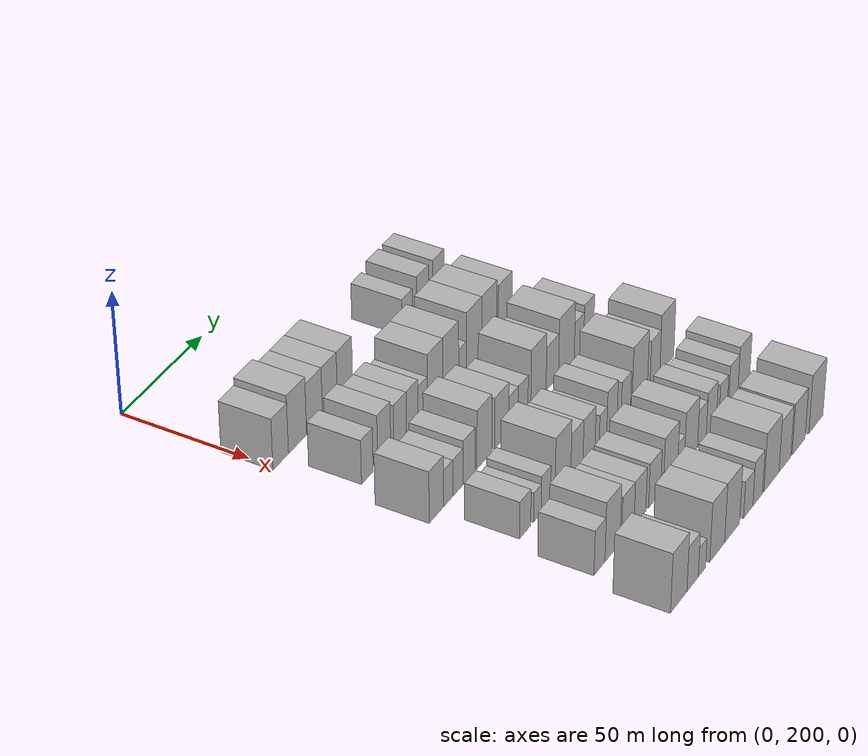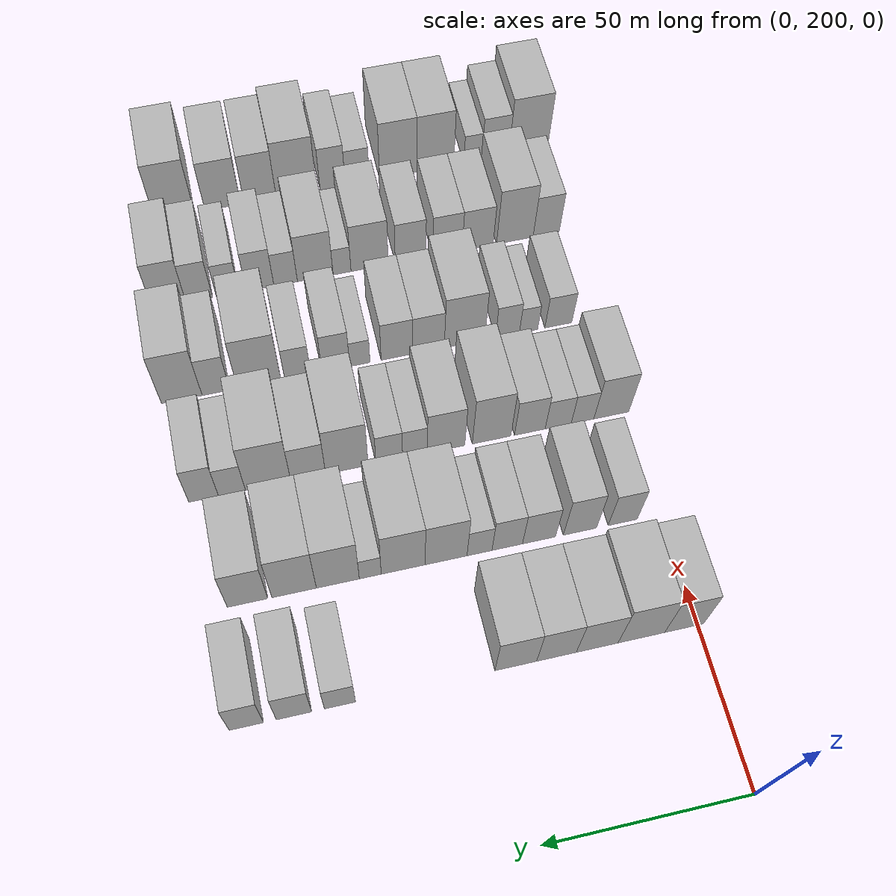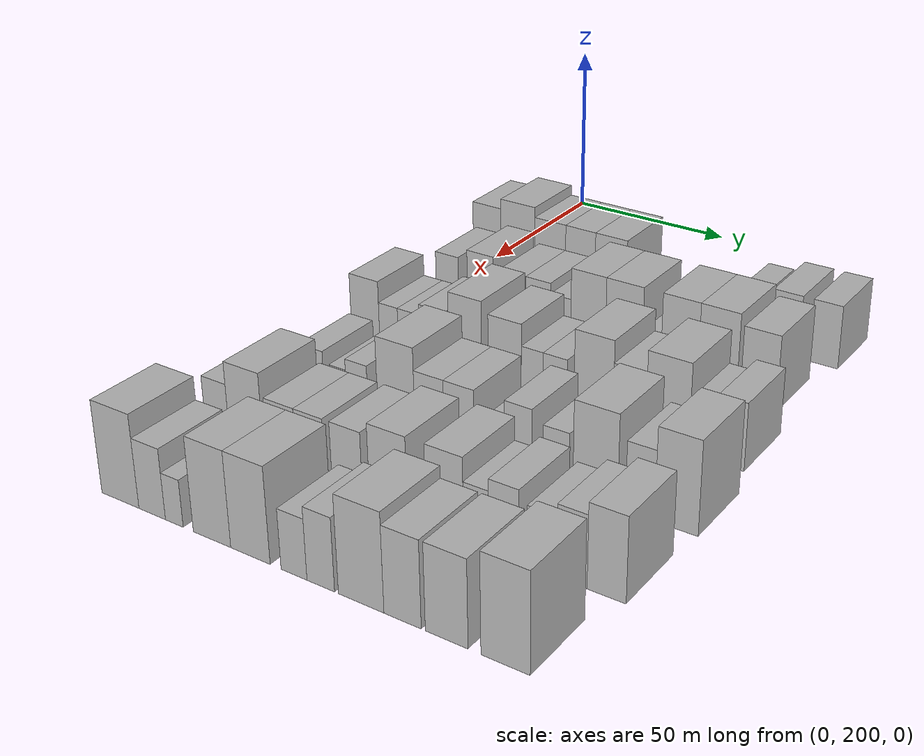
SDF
<sdf version="1.6">
 <world name="default">
  <model name="building_77">
   <static>1</static>
   <pose>50.0000 203.4491 0 0.000000 0.000000 0.000000</pose>
   <link name="link">
    <pose>0 0 10.50 0 0 0</pose>
    <collision name="collision"><geometry><box><size>20.0000 9.7336 21.0000</size></box></geometry></collision>
    <visual name="visual">
     <cast_shadows>0</cast_shadows>
     <geometry><box><size>20.0000 9.7336 21.0000</size></box></geometry>
     <material>
      <script>
       <uri>model://HANNAS_wall/materials/scripts</uri>
       <uri>model://HANNAS_wall/materials/textures</uri>
       <name>vrc/HANNAS_wall</name>
      </script>
     </material>
    </visual>
   </link>
  </model>
  <model name="building_78">
   <static>1</static>
   <pose>50.0000 214.1123 0 0.000000 0.000000 0.000000</pose>
   <link name="link">
    <pose>0 0 12.00 0 0 0</pose>
    <collision name="collision"><geometry><box><size>20.0000 11.5930 24.0000</size></box></geometry></collision>
    <visual name="visual">
     <cast_shadows>0</cast_shadows>
     <geometry><box><size>20.0000 11.5930 24.0000</size></box></geometry>
     <material>
      <script>
       <uri>model://HANNAS_wall/materials/scripts</uri>
       <uri>model://HANNAS_wall/materials/textures</uri>
       <name>vrc/HANNAS_wall</name>
      </script>
     </material>
    </visual>
   </link>
  </model>
  <model name="building_79">
   <static>1</static>
   <pose>50.0000 225.0563 0 0.000000 0.000000 0.000000</pose>
   <link name="link">
    <pose>0 0 10.50 0 0 0</pose>
    <collision name="collision"><geometry><box><size>20.0000 10.2950 21.0000</size></box></geometry></collision>
    <visual name="visual">
     <cast_shadows>0</cast_shadows>
     <geometry><box><size>20.0000 10.2950 21.0000</size></box></geometry>
     <material>
      <script>
       <uri>model://HANNAS_wall/materials/scripts</uri>
       <uri>model://HANNAS_wall/materials/textures</uri>
       <name>vrc/HANNAS_wall</name>
      </script>
     </material>
    </visual>
   </link>
  </model>
  <model name="building_80">
   <static>1</static>
   <pose>50.0000 235.0597 0 0.000000 0.000000 0.000000</pose>
   <link name="link">
    <pose>0 0 10.50 0 0 0</pose>
    <collision name="collision"><geometry><box><size>20.0000 9.7116 21.0000</size></box></geometry></collision>
    <visual name="visual">
     <cast_shadows>0</cast_shadows>
     <geometry><box><size>20.0000 9.7116 21.0000</size></box></geometry>
     <material>
      <script>
       <uri>model://HANNAS_wall/materials/scripts</uri>
       <uri>model://HANNAS_wall/materials/textures</uri>
       <name>vrc/HANNAS_wall</name>
      </script>
     </material>
    </visual>
   </link>
  </model>
  <model name="building_81">
   <static>1</static>
   <pose>50.0000 244.9860 0 0.000000 0.000000 0.000000</pose>
   <link name="link">
    <pose>0 0 10.50 0 0 0</pose>
    <collision name="collision"><geometry><box><size>20.0000 10.1410 21.0000</size></box></geometry></collision>
    <visual name="visual">
     <cast_shadows>0</cast_shadows>
     <geometry><box><size>20.0000 10.1410 21.0000</size></box></geometry>
     <material>
      <script>
       <uri>model://HANNAS_wall/materials/scripts</uri>
       <uri>model://HANNAS_wall/materials/textures</uri>
       <name>vrc/HANNAS_wall</name>
      </script>
     </material>
    </visual>
   </link>
  </model>
  <model name="building_82">
   <static>1</static>
   <pose>50.0000 287.0951 0 0.000000 0.000000 0.000000</pose>
   <link name="link">
    <pose>0 0 7.50 0 0 0</pose>
    <collision name="collision"><geometry><box><size>20.0000 7.3590 15.0000</size></box></geometry></collision>
    <visual name="visual">
     <cast_shadows>0</cast_shadows>
     <geometry><box><size>20.0000 7.3590 15.0000</size></box></geometry>
     <material>
      <script>
       <uri>model://HANNAS_wall/materials/scripts</uri>
       <uri>model://HANNAS_wall/materials/textures</uri>
       <name>vrc/HANNAS_wall</name>
      </script>
     </material>
    </visual>
   </link>
  </model>
  <model name="building_83">
   <static>1</static>
   <pose>50.0000 297.9197 0 0.000000 0.000000 0.000000</pose>
   <link name="link">
    <pose>0 0 9.00 0 0 0</pose>
    <collision name="collision"><geometry><box><size>20.0000 8.2903 18.0000</size></box></geometry></collision>
    <visual name="visual">
     <cast_shadows>0</cast_shadows>
     <geometry><box><size>20.0000 8.2903 18.0000</size></box></geometry>
     <material>
      <script>
       <uri>model://HANNAS_wall/materials/scripts</uri>
       <uri>model://HANNAS_wall/materials/textures</uri>
       <name>vrc/HANNAS_wall</name>
      </script>
     </material>
    </visual>
   </link>
  </model>
  <model name="building_84">
   <static>1</static>
   <pose>50.0000 309.0456 0 0.000000 0.000000 0.000000</pose>
   <link name="link">
    <pose>0 0 9.00 0 0 0</pose>
    <collision name="collision"><geometry><box><size>20.0000 7.9614 18.0000</size></box></geometry></collision>
    <visual name="visual">
     <cast_shadows>0</cast_shadows>
     <geometry><box><size>20.0000 7.9614 18.0000</size></box></geometry>
     <material>
      <script>
       <uri>model://HANNAS_wall/materials/scripts</uri>
       <uri>model://HANNAS_wall/materials/textures</uri>
       <name>vrc/HANNAS_wall</name>
      </script>
     </material>
    </visual>
   </link>
  </model>
  <model name="building_187">
   <static>1</static>
   <pose>79.0000 209.8755 0 0.000000 0.000000 0.000000</pose>
   <link name="link">
    <pose>0 0 9.00 0 0 0</pose>
    <collision name="collision"><geometry><box><size>20.0000 7.5238 18.0000</size></box></geometry></collision>
    <visual name="visual">
     <cast_shadows>0</cast_shadows>
     <geometry><box><size>20.0000 7.5238 18.0000</size></box></geometry>
     <material>
      <script>
       <uri>model://HANNAS_wall/materials/scripts</uri>
       <uri>model://HANNAS_wall/materials/textures</uri>
       <name>vrc/HANNAS_wall</name>
      </script>
     </material>
    </visual>
   </link>
  </model>
  <model name="building_188">
   <static>1</static>
   <pose>79.0000 220.9124 0 0.000000 0.000000 0.000000</pose>
   <link name="link">
    <pose>0 0 10.50 0 0 0</pose>
    <collision name="collision"><geometry><box><size>20.0000 8.5501 21.0000</size></box></geometry></collision>
    <visual name="visual">
     <cast_shadows>0</cast_shadows>
     <geometry><box><size>20.0000 8.5501 21.0000</size></box></geometry>
     <material>
      <script>
       <uri>model://HANNAS_wall/materials/scripts</uri>
       <uri>model://HANNAS_wall/materials/textures</uri>
       <name>vrc/HANNAS_wall</name>
      </script>
     </material>
    </visual>
   </link>
  </model>
  <model name="building_189">
   <static>1</static>
   <pose>79.0000 231.4026 0 0.000000 0.000000 0.000000</pose>
   <link name="link">
    <pose>0 0 9.00 0 0 0</pose>
    <collision name="collision"><geometry><box><size>20.0000 8.4302 18.0000</size></box></geometry></collision>
    <visual name="visual">
     <cast_shadows>0</cast_shadows>
     <geometry><box><size>20.0000 8.4302 18.0000</size></box></geometry>
     <material>
      <script>
       <uri>model://HANNAS_wall/materials/scripts</uri>
       <uri>model://HANNAS_wall/materials/textures</uri>
       <name>vrc/HANNAS_wall</name>
      </script>
     </material>
    </visual>
   </link>
  </model>
  <model name="building_190">
   <static>1</static>
   <pose>79.0000 239.4987 0 0.000000 0.000000 0.000000</pose>
   <link name="link">
    <pose>0 0 9.00 0 0 0</pose>
    <collision name="collision"><geometry><box><size>20.0000 7.7620 18.0000</size></box></geometry></collision>
    <visual name="visual">
     <cast_shadows>0</cast_shadows>
     <geometry><box><size>20.0000 7.7620 18.0000</size></box></geometry>
     <material>
      <script>
       <uri>model://HANNAS_wall/materials/scripts</uri>
       <uri>model://HANNAS_wall/materials/textures</uri>
       <name>vrc/HANNAS_wall</name>
      </script>
     </material>
    </visual>
   </link>
  </model>
  <model name="building_191">
   <static>1</static>
   <pose>79.0000 246.5307 0 0.000000 0.000000 0.000000</pose>
   <link name="link">
    <pose>0 0 7.50 0 0 0</pose>
    <collision name="collision"><geometry><box><size>20.0000 6.3020 15.0000</size></box></geometry></collision>
    <visual name="visual">
     <cast_shadows>0</cast_shadows>
     <geometry><box><size>20.0000 6.3020 15.0000</size></box></geometry>
     <material>
      <script>
       <uri>model://HANNAS_wall/materials/scripts</uri>
       <uri>model://HANNAS_wall/materials/textures</uri>
       <name>vrc/HANNAS_wall</name>
      </script>
     </material>
    </visual>
   </link>
  </model>
  <model name="building_192">
   <static>1</static>
   <pose>79.0000 254.9604 0 0.000000 0.000000 0.000000</pose>
   <link name="link">
    <pose>0 0 12.00 0 0 0</pose>
    <collision name="collision"><geometry><box><size>20.0000 10.5575 24.0000</size></box></geometry></collision>
    <visual name="visual">
     <cast_shadows>0</cast_shadows>
     <geometry><box><size>20.0000 10.5575 24.0000</size></box></geometry>
     <material>
      <script>
       <uri>model://HANNAS_wall/materials/scripts</uri>
       <uri>model://HANNAS_wall/materials/textures</uri>
       <name>vrc/HANNAS_wall</name>
      </script>
     </material>
    </visual>
   </link>
  </model>
  <model name="building_193">
   <static>1</static>
   <pose>79.0000 265.6976 0 0.000000 0.000000 0.000000</pose>
   <link name="link">
    <pose>0 0 12.00 0 0 0</pose>
    <collision name="collision"><geometry><box><size>20.0000 10.9169 24.0000</size></box></geometry></collision>
    <visual name="visual">
     <cast_shadows>0</cast_shadows>
     <geometry><box><size>20.0000 10.9169 24.0000</size></box></geometry>
     <material>
      <script>
       <uri>model://HANNAS_wall/materials/scripts</uri>
       <uri>model://HANNAS_wall/materials/textures</uri>
       <name>vrc/HANNAS_wall</name>
      </script>
     </material>
    </visual>
   </link>
  </model>
  <model name="building_194">
   <static>1</static>
   <pose>79.0000 273.8722 0 0.000000 0.000000 0.000000</pose>
   <link name="link">
    <pose>0 0 6.00 0 0 0</pose>
    <collision name="collision"><geometry><box><size>20.0000 5.4324 12.0000</size></box></geometry></collision>
    <visual name="visual">
     <cast_shadows>0</cast_shadows>
     <geometry><box><size>20.0000 5.4324 12.0000</size></box></geometry>
     <material>
      <script>
       <uri>model://HANNAS_wall/materials/scripts</uri>
       <uri>model://HANNAS_wall/materials/textures</uri>
       <name>vrc/HANNAS_wall</name>
      </script>
     </material>
    </visual>
   </link>
  </model>
  <model name="building_195">
   <static>1</static>
   <pose>79.0000 281.8985 0 0.000000 0.000000 0.000000</pose>
   <link name="link">
    <pose>0 0 12.00 0 0 0</pose>
    <collision name="collision"><geometry><box><size>20.0000 10.6200 24.0000</size></box></geometry></collision>
    <visual name="visual">
     <cast_shadows>0</cast_shadows>
     <geometry><box><size>20.0000 10.6200 24.0000</size></box></geometry>
     <material>
      <script>
       <uri>model://HANNAS_wall/materials/scripts</uri>
       <uri>model://HANNAS_wall/materials/textures</uri>
       <name>vrc/HANNAS_wall</name>
      </script>
     </material>
    </visual>
   </link>
  </model>
  <model name="building_196">
   <static>1</static>
   <pose>79.0000 292.6596 0 0.000000 0.000000 0.000000</pose>
   <link name="link">
    <pose>0 0 12.00 0 0 0</pose>
    <collision name="collision"><geometry><box><size>20.0000 10.9022 24.0000</size></box></geometry></collision>
    <visual name="visual">
     <cast_shadows>0</cast_shadows>
     <geometry><box><size>20.0000 10.9022 24.0000</size></box></geometry>
     <material>
      <script>
       <uri>model://HANNAS_wall/materials/scripts</uri>
       <uri>model://HANNAS_wall/materials/textures</uri>
       <name>vrc/HANNAS_wall</name>
      </script>
     </material>
    </visual>
   </link>
  </model>
  <model name="building_197">
   <static>1</static>
   <pose>79.0000 304.0490 0 0.000000 0.000000 0.000000</pose>
   <link name="link">
    <pose>0 0 10.50 0 0 0</pose>
    <collision name="collision"><geometry><box><size>20.0000 9.8767 21.0000</size></box></geometry></collision>
    <visual name="visual">
     <cast_shadows>0</cast_shadows>
     <geometry><box><size>20.0000 9.8767 21.0000</size></box></geometry>
     <material>
      <script>
       <uri>model://HANNAS_wall/materials/scripts</uri>
       <uri>model://HANNAS_wall/materials/textures</uri>
       <name>vrc/HANNAS_wall</name>
      </script>
     </material>
    </visual>
   </link>
  </model>
  <model name="building_290">
   <static>1</static>
   <pose>108.0000 204.0424 0 0.000000 0.000000 0.000000</pose>
   <link name="link">
    <pose>0 0 10.50 0 0 0</pose>
    <collision name="collision"><geometry><box><size>20.0000 9.4125 21.0000</size></box></geometry></collision>
    <visual name="visual">
     <cast_shadows>0</cast_shadows>
     <geometry><box><size>20.0000 9.4125 21.0000</size></box></geometry>
     <material>
      <script>
       <uri>model://HANNAS_wall/materials/scripts</uri>
       <uri>model://HANNAS_wall/materials/textures</uri>
       <name>vrc/HANNAS_wall</name>
      </script>
     </material>
    </visual>
   </link>
  </model>
  <model name="building_291">
   <static>1</static>
   <pose>108.0000 211.7996 0 0.000000 0.000000 0.000000</pose>
   <link name="link">
    <pose>0 0 7.50 0 0 0</pose>
    <collision name="collision"><geometry><box><size>20.0000 6.1019 15.0000</size></box></geometry></collision>
    <visual name="visual">
     <cast_shadows>0</cast_shadows>
     <geometry><box><size>20.0000 6.1019 15.0000</size></box></geometry>
     <material>
      <script>
       <uri>model://HANNAS_wall/materials/scripts</uri>
       <uri>model://HANNAS_wall/materials/textures</uri>
       <name>vrc/HANNAS_wall</name>
      </script>
     </material>
    </visual>
   </link>
  </model>
  <model name="building_292">
   <static>1</static>
   <pose>108.0000 218.3377 0 0.000000 0.000000 0.000000</pose>
   <link name="link">
    <pose>0 0 7.50 0 0 0</pose>
    <collision name="collision"><geometry><box><size>20.0000 6.9744 15.0000</size></box></geometry></collision>
    <visual name="visual">
     <cast_shadows>0</cast_shadows>
     <geometry><box><size>20.0000 6.9744 15.0000</size></box></geometry>
     <material>
      <script>
       <uri>model://HANNAS_wall/materials/scripts</uri>
       <uri>model://HANNAS_wall/materials/textures</uri>
       <name>vrc/HANNAS_wall</name>
      </script>
     </material>
    </visual>
   </link>
  </model>
  <model name="building_293">
   <static>1</static>
   <pose>108.0000 225.9015 0 0.000000 0.000000 0.000000</pose>
   <link name="link">
    <pose>0 0 9.00 0 0 0</pose>
    <collision name="collision"><geometry><box><size>20.0000 8.1530 18.0000</size></box></geometry></collision>
    <visual name="visual">
     <cast_shadows>0</cast_shadows>
     <geometry><box><size>20.0000 8.1530 18.0000</size></box></geometry>
     <material>
      <script>
       <uri>model://HANNAS_wall/materials/scripts</uri>
       <uri>model://HANNAS_wall/materials/textures</uri>
       <name>vrc/HANNAS_wall</name>
      </script>
     </material>
    </visual>
   </link>
  </model>
  <model name="building_294">
   <static>1</static>
   <pose>108.0000 236.0619 0 0.000000 0.000000 0.000000</pose>
   <link name="link">
    <pose>0 0 12.00 0 0 0</pose>
    <collision name="collision"><geometry><box><size>20.0000 10.1679 24.0000</size></box></geometry></collision>
    <visual name="visual">
     <cast_shadows>0</cast_shadows>
     <geometry><box><size>20.0000 10.1679 24.0000</size></box></geometry>
     <material>
      <script>
       <uri>model://HANNAS_wall/materials/scripts</uri>
       <uri>model://HANNAS_wall/materials/textures</uri>
       <name>vrc/HANNAS_wall</name>
      </script>
     </material>
    </visual>
   </link>
  </model>
  <model name="building_295">
   <static>1</static>
   <pose>108.0000 248.0882 0 0.000000 0.000000 0.000000</pose>
   <link name="link">
    <pose>0 0 10.50 0 0 0</pose>
    <collision name="collision"><geometry><box><size>20.0000 9.8847 21.0000</size></box></geometry></collision>
    <visual name="visual">
     <cast_shadows>0</cast_shadows>
     <geometry><box><size>20.0000 9.8847 21.0000</size></box></geometry>
     <material>
      <script>
       <uri>model://HANNAS_wall/materials/scripts</uri>
       <uri>model://HANNAS_wall/materials/textures</uri>
       <name>vrc/HANNAS_wall</name>
      </script>
     </material>
    </visual>
   </link>
  </model>
  <model name="building_296">
   <static>1</static>
   <pose>108.0000 256.2337 0 0.000000 0.000000 0.000000</pose>
   <link name="link">
    <pose>0 0 7.50 0 0 0</pose>
    <collision name="collision"><geometry><box><size>20.0000 6.4063 15.0000</size></box></geometry></collision>
    <visual name="visual">
     <cast_shadows>0</cast_shadows>
     <geometry><box><size>20.0000 6.4063 15.0000</size></box></geometry>
     <material>
      <script>
       <uri>model://HANNAS_wall/materials/scripts</uri>
       <uri>model://HANNAS_wall/materials/textures</uri>
       <name>vrc/HANNAS_wall</name>
      </script>
     </material>
    </visual>
   </link>
  </model>
  <model name="building_297">
   <static>1</static>
   <pose>108.0000 262.9032 0 0.000000 0.000000 0.000000</pose>
   <link name="link">
    <pose>0 0 7.50 0 0 0</pose>
    <collision name="collision"><geometry><box><size>20.0000 6.9329 15.0000</size></box></geometry></collision>
    <visual name="visual">
     <cast_shadows>0</cast_shadows>
     <geometry><box><size>20.0000 6.9329 15.0000</size></box></geometry>
     <material>
      <script>
       <uri>model://HANNAS_wall/materials/scripts</uri>
       <uri>model://HANNAS_wall/materials/textures</uri>
       <name>vrc/HANNAS_wall</name>
      </script>
     </material>
    </visual>
   </link>
  </model>
  <model name="building_298">
   <static>1</static>
   <pose>108.0000 273.8559 0 0.000000 0.000000 0.000000</pose>
   <link name="link">
    <pose>0 0 12.00 0 0 0</pose>
    <collision name="collision"><geometry><box><size>20.0000 10.9725 24.0000</size></box></geometry></collision>
    <visual name="visual">
     <cast_shadows>0</cast_shadows>
     <geometry><box><size>20.0000 10.9725 24.0000</size></box></geometry>
     <material>
      <script>
       <uri>model://HANNAS_wall/materials/scripts</uri>
       <uri>model://HANNAS_wall/materials/textures</uri>
       <name>vrc/HANNAS_wall</name>
      </script>
     </material>
    </visual>
   </link>
  </model>
  <model name="building_299">
   <static>1</static>
   <pose>108.0000 283.8107 0 0.000000 0.000000 0.000000</pose>
   <link name="link">
    <pose>0 0 9.00 0 0 0</pose>
    <collision name="collision"><geometry><box><size>20.0000 8.9371 18.0000</size></box></geometry></collision>
    <visual name="visual">
     <cast_shadows>0</cast_shadows>
     <geometry><box><size>20.0000 8.9371 18.0000</size></box></geometry>
     <material>
      <script>
       <uri>model://HANNAS_wall/materials/scripts</uri>
       <uri>model://HANNAS_wall/materials/textures</uri>
       <name>vrc/HANNAS_wall</name>
      </script>
     </material>
    </visual>
   </link>
  </model>
  <model name="building_300">
   <static>1</static>
   <pose>108.0000 294.0735 0 0.000000 0.000000 0.000000</pose>
   <link name="link">
    <pose>0 0 12.00 0 0 0</pose>
    <collision name="collision"><geometry><box><size>20.0000 11.5885 24.0000</size></box></geometry></collision>
    <visual name="visual">
     <cast_shadows>0</cast_shadows>
     <geometry><box><size>20.0000 11.5885 24.0000</size></box></geometry>
     <material>
      <script>
       <uri>model://HANNAS_wall/materials/scripts</uri>
       <uri>model://HANNAS_wall/materials/textures</uri>
       <name>vrc/HANNAS_wall</name>
      </script>
     </material>
    </visual>
   </link>
  </model>
  <model name="building_301">
   <static>1</static>
   <pose>108.0000 303.2953 0 0.000000 0.000000 0.000000</pose>
   <link name="link">
    <pose>0 0 7.50 0 0 0</pose>
    <collision name="collision"><geometry><box><size>20.0000 6.8552 15.0000</size></box></geometry></collision>
    <visual name="visual">
     <cast_shadows>0</cast_shadows>
     <geometry><box><size>20.0000 6.8552 15.0000</size></box></geometry>
     <material>
      <script>
       <uri>model://HANNAS_wall/materials/scripts</uri>
       <uri>model://HANNAS_wall/materials/textures</uri>
       <name>vrc/HANNAS_wall</name>
      </script>
     </material>
    </visual>
   </link>
  </model>
  <model name="building_302">
   <static>1</static>
   <pose>108.0000 310.4656 0 0.000000 0.000000 0.000000</pose>
   <link name="link">
    <pose>0 0 9.00 0 0 0</pose>
    <collision name="collision"><geometry><box><size>20.0000 7.4854 18.0000</size></box></geometry></collision>
    <visual name="visual">
     <cast_shadows>0</cast_shadows>
     <geometry><box><size>20.0000 7.4854 18.0000</size></box></geometry>
     <material>
      <script>
       <uri>model://HANNAS_wall/materials/scripts</uri>
       <uri>model://HANNAS_wall/materials/textures</uri>
       <name>vrc/HANNAS_wall</name>
      </script>
     </material>
    </visual>
   </link>
  </model>
  <model name="building_409">
   <static>1</static>
   <pose>137.0000 210.1394 0 0.000000 0.000000 0.000000</pose>
   <link name="link">
    <pose>0 0 7.50 0 0 0</pose>
    <collision name="collision"><geometry><box><size>20.0000 7.4865 15.0000</size></box></geometry></collision>
    <visual name="visual">
     <cast_shadows>0</cast_shadows>
     <geometry><box><size>20.0000 7.4865 15.0000</size></box></geometry>
     <material>
      <script>
       <uri>model://HANNAS_wall/materials/scripts</uri>
       <uri>model://HANNAS_wall/materials/textures</uri>
       <name>vrc/HANNAS_wall</name>
      </script>
     </material>
    </visual>
   </link>
  </model>
  <model name="building_410">
   <static>1</static>
   <pose>137.0000 218.4273 0 0.000000 0.000000 0.000000</pose>
   <link name="link">
    <pose>0 0 6.00 0 0 0</pose>
    <collision name="collision"><geometry><box><size>20.0000 5.0892 12.0000</size></box></geometry></collision>
    <visual name="visual">
     <cast_shadows>0</cast_shadows>
     <geometry><box><size>20.0000 5.0892 12.0000</size></box></geometry>
     <material>
      <script>
       <uri>model://HANNAS_wall/materials/scripts</uri>
       <uri>model://HANNAS_wall/materials/textures</uri>
       <name>vrc/HANNAS_wall</name>
      </script>
     </material>
    </visual>
   </link>
  </model>
  <model name="building_411">
   <static>1</static>
   <pose>137.0000 224.2739 0 0.000000 0.000000 0.000000</pose>
   <link name="link">
    <pose>0 0 7.50 0 0 0</pose>
    <collision name="collision"><geometry><box><size>20.0000 6.6040 15.0000</size></box></geometry></collision>
    <visual name="visual">
     <cast_shadows>0</cast_shadows>
     <geometry><box><size>20.0000 6.6040 15.0000</size></box></geometry>
     <material>
      <script>
       <uri>model://HANNAS_wall/materials/scripts</uri>
       <uri>model://HANNAS_wall/materials/textures</uri>
       <name>vrc/HANNAS_wall</name>
      </script>
     </material>
    </visual>
   </link>
  </model>
  <model name="building_412">
   <static>1</static>
   <pose>137.0000 236.1181 0 0.000000 0.000000 0.000000</pose>
   <link name="link">
    <pose>0 0 12.00 0 0 0</pose>
    <collision name="collision"><geometry><box><size>20.0000 11.0843 24.0000</size></box></geometry></collision>
    <visual name="visual">
     <cast_shadows>0</cast_shadows>
     <geometry><box><size>20.0000 11.0843 24.0000</size></box></geometry>
     <material>
      <script>
       <uri>model://HANNAS_wall/materials/scripts</uri>
       <uri>model://HANNAS_wall/materials/textures</uri>
       <name>vrc/HANNAS_wall</name>
      </script>
     </material>
    </visual>
   </link>
  </model>
  <model name="building_413">
   <static>1</static>
   <pose>137.0000 245.9458 0 0.000000 0.000000 0.000000</pose>
   <link name="link">
    <pose>0 0 9.00 0 0 0</pose>
    <collision name="collision"><geometry><box><size>20.0000 8.5711 18.0000</size></box></geometry></collision>
    <visual name="visual">
     <cast_shadows>0</cast_shadows>
     <geometry><box><size>20.0000 8.5711 18.0000</size></box></geometry>
     <material>
      <script>
       <uri>model://HANNAS_wall/materials/scripts</uri>
       <uri>model://HANNAS_wall/materials/textures</uri>
       <name>vrc/HANNAS_wall</name>
      </script>
     </material>
    </visual>
   </link>
  </model>
  <model name="building_414">
   <static>1</static>
   <pose>137.0000 254.5372 0 0.000000 0.000000 0.000000</pose>
   <link name="link">
    <pose>0 0 9.00 0 0 0</pose>
    <collision name="collision"><geometry><box><size>20.0000 8.6117 18.0000</size></box></geometry></collision>
    <visual name="visual">
     <cast_shadows>0</cast_shadows>
     <geometry><box><size>20.0000 8.6117 18.0000</size></box></geometry>
     <material>
      <script>
       <uri>model://HANNAS_wall/materials/scripts</uri>
       <uri>model://HANNAS_wall/materials/textures</uri>
       <name>vrc/HANNAS_wall</name>
      </script>
     </material>
    </visual>
   </link>
  </model>
  <model name="building_415">
   <static>1</static>
   <pose>137.0000 264.5760 0 0.000000 0.000000 0.000000</pose>
   <link name="link">
    <pose>0 0 6.00 0 0 0</pose>
    <collision name="collision"><geometry><box><size>20.0000 5.4660 12.0000</size></box></geometry></collision>
    <visual name="visual">
     <cast_shadows>0</cast_shadows>
     <geometry><box><size>20.0000 5.4660 12.0000</size></box></geometry>
     <material>
      <script>
       <uri>model://HANNAS_wall/materials/scripts</uri>
       <uri>model://HANNAS_wall/materials/textures</uri>
       <name>vrc/HANNAS_wall</name>
      </script>
     </material>
    </visual>
   </link>
  </model>
  <model name="building_416">
   <static>1</static>
   <pose>137.0000 271.0488 0 0.000000 0.000000 0.000000</pose>
   <link name="link">
    <pose>0 0 9.00 0 0 0</pose>
    <collision name="collision"><geometry><box><size>20.0000 7.4796 18.0000</size></box></geometry></collision>
    <visual name="visual">
     <cast_shadows>0</cast_shadows>
     <geometry><box><size>20.0000 7.4796 18.0000</size></box></geometry>
     <material>
      <script>
       <uri>model://HANNAS_wall/materials/scripts</uri>
       <uri>model://HANNAS_wall/materials/textures</uri>
       <name>vrc/HANNAS_wall</name>
      </script>
     </material>
    </visual>
   </link>
  </model>
  <model name="building_417">
   <static>1</static>
   <pose>137.0000 281.2713 0 0.000000 0.000000 0.000000</pose>
   <link name="link">
    <pose>0 0 7.50 0 0 0</pose>
    <collision name="collision"><geometry><box><size>20.0000 6.9654 15.0000</size></box></geometry></collision>
    <visual name="visual">
     <cast_shadows>0</cast_shadows>
     <geometry><box><size>20.0000 6.9654 15.0000</size></box></geometry>
     <material>
      <script>
       <uri>model://HANNAS_wall/materials/scripts</uri>
       <uri>model://HANNAS_wall/materials/textures</uri>
       <name>vrc/HANNAS_wall</name>
      </script>
     </material>
    </visual>
   </link>
  </model>
  <model name="building_418">
   <static>1</static>
   <pose>137.0000 291.5297 0 0.000000 0.000000 0.000000</pose>
   <link name="link">
    <pose>0 0 12.00 0 0 0</pose>
    <collision name="collision"><geometry><box><size>20.0000 11.5515 24.0000</size></box></geometry></collision>
    <visual name="visual">
     <cast_shadows>0</cast_shadows>
     <geometry><box><size>20.0000 11.5515 24.0000</size></box></geometry>
     <material>
      <script>
       <uri>model://HANNAS_wall/materials/scripts</uri>
       <uri>model://HANNAS_wall/materials/textures</uri>
       <name>vrc/HANNAS_wall</name>
      </script>
     </material>
    </visual>
   </link>
  </model>
  <model name="building_419">
   <static>1</static>
   <pose>137.0000 302.9646 0 0.000000 0.000000 0.000000</pose>
   <link name="link">
    <pose>0 0 9.00 0 0 0</pose>
    <collision name="collision"><geometry><box><size>20.0000 7.3182 18.0000</size></box></geometry></collision>
    <visual name="visual">
     <cast_shadows>0</cast_shadows>
     <geometry><box><size>20.0000 7.3182 18.0000</size></box></geometry>
     <material>
      <script>
       <uri>model://HANNAS_wall/materials/scripts</uri>
       <uri>model://HANNAS_wall/materials/textures</uri>
       <name>vrc/HANNAS_wall</name>
      </script>
     </material>
    </visual>
   </link>
  </model>
  <model name="building_420">
   <static>1</static>
   <pose>137.0000 311.9605 0 0.000000 0.000000 0.000000</pose>
   <link name="link">
    <pose>0 0 12.00 0 0 0</pose>
    <collision name="collision"><geometry><box><size>20.0000 10.6737 24.0000</size></box></geometry></collision>
    <visual name="visual">
     <cast_shadows>0</cast_shadows>
     <geometry><box><size>20.0000 10.6737 24.0000</size></box></geometry>
     <material>
      <script>
       <uri>model://HANNAS_wall/materials/scripts</uri>
       <uri>model://HANNAS_wall/materials/textures</uri>
       <name>vrc/HANNAS_wall</name>
      </script>
     </material>
    </visual>
   </link>
  </model>
  <model name="building_528">
   <static>1</static>
   <pose>166.0000 205.5049 0 0.000000 0.000000 0.000000</pose>
   <link name="link">
    <pose>0 0 9.00 0 0 0</pose>
    <collision name="collision"><geometry><box><size>20.0000 7.5598 18.0000</size></box></geometry></collision>
    <visual name="visual">
     <cast_shadows>0</cast_shadows>
     <geometry><box><size>20.0000 7.5598 18.0000</size></box></geometry>
     <material>
      <script>
       <uri>model://HANNAS_wall/materials/scripts</uri>
       <uri>model://HANNAS_wall/materials/textures</uri>
       <name>vrc/HANNAS_wall</name>
      </script>
     </material>
    </visual>
   </link>
  </model>
  <model name="building_529">
   <static>1</static>
   <pose>166.0000 214.5492 0 0.000000 0.000000 0.000000</pose>
   <link name="link">
    <pose>0 0 12.00 0 0 0</pose>
    <collision name="collision"><geometry><box><size>20.0000 10.5289 24.0000</size></box></geometry></collision>
    <visual name="visual">
     <cast_shadows>0</cast_shadows>
     <geometry><box><size>20.0000 10.5289 24.0000</size></box></geometry>
     <material>
      <script>
       <uri>model://HANNAS_wall/materials/scripts</uri>
       <uri>model://HANNAS_wall/materials/textures</uri>
       <name>vrc/HANNAS_wall</name>
      </script>
     </material>
    </visual>
   </link>
  </model>
  <model name="building_530">
   <static>1</static>
   <pose>166.0000 225.2321 0 0.000000 0.000000 0.000000</pose>
   <link name="link">
    <pose>0 0 9.00 0 0 0</pose>
    <collision name="collision"><geometry><box><size>20.0000 8.8370 18.0000</size></box></geometry></collision>
    <visual name="visual">
     <cast_shadows>0</cast_shadows>
     <geometry><box><size>20.0000 8.8370 18.0000</size></box></geometry>
     <material>
      <script>
       <uri>model://HANNAS_wall/materials/scripts</uri>
       <uri>model://HANNAS_wall/materials/textures</uri>
       <name>vrc/HANNAS_wall</name>
      </script>
     </material>
    </visual>
   </link>
  </model>
  <model name="building_531">
   <static>1</static>
   <pose>166.0000 233.8454 0 0.000000 0.000000 0.000000</pose>
   <link name="link">
    <pose>0 0 9.00 0 0 0</pose>
    <collision name="collision"><geometry><box><size>20.0000 8.3896 18.0000</size></box></geometry></collision>
    <visual name="visual">
     <cast_shadows>0</cast_shadows>
     <geometry><box><size>20.0000 8.3896 18.0000</size></box></geometry>
     <material>
      <script>
       <uri>model://HANNAS_wall/materials/scripts</uri>
       <uri>model://HANNAS_wall/materials/textures</uri>
       <name>vrc/HANNAS_wall</name>
      </script>
     </material>
    </visual>
   </link>
  </model>
  <model name="building_532">
   <static>1</static>
   <pose>166.0000 244.3687 0 0.000000 0.000000 0.000000</pose>
   <link name="link">
    <pose>0 0 9.00 0 0 0</pose>
    <collision name="collision"><geometry><box><size>20.0000 8.6570 18.0000</size></box></geometry></collision>
    <visual name="visual">
     <cast_shadows>0</cast_shadows>
     <geometry><box><size>20.0000 8.6570 18.0000</size></box></geometry>
     <material>
      <script>
       <uri>model://HANNAS_wall/materials/scripts</uri>
       <uri>model://HANNAS_wall/materials/textures</uri>
       <name>vrc/HANNAS_wall</name>
      </script>
     </material>
    </visual>
   </link>
  </model>
  <model name="building_533">
   <static>1</static>
   <pose>166.0000 255.9064 0 0.000000 0.000000 0.000000</pose>
   <link name="link">
    <pose>0 0 10.50 0 0 0</pose>
    <collision name="collision"><geometry><box><size>20.0000 10.4185 21.0000</size></box></geometry></collision>
    <visual name="visual">
     <cast_shadows>0</cast_shadows>
     <geometry><box><size>20.0000 10.4185 21.0000</size></box></geometry>
     <material>
      <script>
       <uri>model://HANNAS_wall/materials/scripts</uri>
       <uri>model://HANNAS_wall/materials/textures</uri>
       <name>vrc/HANNAS_wall</name>
      </script>
     </material>
    </visual>
   </link>
  </model>
  <model name="building_534">
   <static>1</static>
   <pose>166.0000 263.6215 0 0.000000 0.000000 0.000000</pose>
   <link name="link">
    <pose>0 0 6.00 0 0 0</pose>
    <collision name="collision"><geometry><box><size>20.0000 5.0116 12.0000</size></box></geometry></collision>
    <visual name="visual">
     <cast_shadows>0</cast_shadows>
     <geometry><box><size>20.0000 5.0116 12.0000</size></box></geometry>
     <material>
      <script>
       <uri>model://HANNAS_wall/materials/scripts</uri>
       <uri>model://HANNAS_wall/materials/textures</uri>
       <name>vrc/HANNAS_wall</name>
      </script>
     </material>
    </visual>
   </link>
  </model>
  <model name="building_535">
   <static>1</static>
   <pose>166.0000 271.1048 0 0.000000 0.000000 0.000000</pose>
   <link name="link">
    <pose>0 0 10.50 0 0 0</pose>
    <collision name="collision"><geometry><box><size>20.0000 9.9550 21.0000</size></box></geometry></collision>
    <visual name="visual">
     <cast_shadows>0</cast_shadows>
     <geometry><box><size>20.0000 9.9550 21.0000</size></box></geometry>
     <material>
      <script>
       <uri>model://HANNAS_wall/materials/scripts</uri>
       <uri>model://HANNAS_wall/materials/textures</uri>
       <name>vrc/HANNAS_wall</name>
      </script>
     </material>
    </visual>
   </link>
  </model>
  <model name="building_536">
   <static>1</static>
   <pose>166.0000 279.3418 0 0.000000 0.000000 0.000000</pose>
   <link name="link">
    <pose>0 0 7.50 0 0 0</pose>
    <collision name="collision"><geometry><box><size>20.0000 6.5190 15.0000</size></box></geometry></collision>
    <visual name="visual">
     <cast_shadows>0</cast_shadows>
     <geometry><box><size>20.0000 6.5190 15.0000</size></box></geometry>
     <material>
      <script>
       <uri>model://HANNAS_wall/materials/scripts</uri>
       <uri>model://HANNAS_wall/materials/textures</uri>
       <name>vrc/HANNAS_wall</name>
      </script>
     </material>
    </visual>
   </link>
  </model>
  <model name="building_537">
   <static>1</static>
   <pose>166.0000 286.4194 0 0.000000 0.000000 0.000000</pose>
   <link name="link">
    <pose>0 0 9.00 0 0 0</pose>
    <collision name="collision"><geometry><box><size>20.0000 7.6363 18.0000</size></box></geometry></collision>
    <visual name="visual">
     <cast_shadows>0</cast_shadows>
     <geometry><box><size>20.0000 7.6363 18.0000</size></box></geometry>
     <material>
      <script>
       <uri>model://HANNAS_wall/materials/scripts</uri>
       <uri>model://HANNAS_wall/materials/textures</uri>
       <name>vrc/HANNAS_wall</name>
      </script>
     </material>
    </visual>
   </link>
  </model>
  <model name="building_538">
   <static>1</static>
   <pose>166.0000 295.3744 0 0.000000 0.000000 0.000000</pose>
   <link name="link">
    <pose>0 0 7.50 0 0 0</pose>
    <collision name="collision"><geometry><box><size>20.0000 6.2736 15.0000</size></box></geometry></collision>
    <visual name="visual">
     <cast_shadows>0</cast_shadows>
     <geometry><box><size>20.0000 6.2736 15.0000</size></box></geometry>
     <material>
      <script>
       <uri>model://HANNAS_wall/materials/scripts</uri>
       <uri>model://HANNAS_wall/materials/textures</uri>
       <name>vrc/HANNAS_wall</name>
      </script>
     </material>
    </visual>
   </link>
  </model>
  <model name="building_539">
   <static>1</static>
   <pose>166.0000 303.1598 0 0.000000 0.000000 0.000000</pose>
   <link name="link">
    <pose>0 0 9.00 0 0 0</pose>
    <collision name="collision"><geometry><box><size>20.0000 7.2973 18.0000</size></box></geometry></collision>
    <visual name="visual">
     <cast_shadows>0</cast_shadows>
     <geometry><box><size>20.0000 7.2973 18.0000</size></box></geometry>
     <material>
      <script>
       <uri>model://HANNAS_wall/materials/scripts</uri>
       <uri>model://HANNAS_wall/materials/textures</uri>
       <name>vrc/HANNAS_wall</name>
      </script>
     </material>
    </visual>
   </link>
  </model>
  <model name="building_540">
   <static>1</static>
   <pose>166.0000 311.3956 0 0.000000 0.000000 0.000000</pose>
   <link name="link">
    <pose>0 0 10.50 0 0 0</pose>
    <collision name="collision"><geometry><box><size>20.0000 9.1742 21.0000</size></box></geometry></collision>
    <visual name="visual">
     <cast_shadows>0</cast_shadows>
     <geometry><box><size>20.0000 9.1742 21.0000</size></box></geometry>
     <material>
      <script>
       <uri>model://HANNAS_wall/materials/scripts</uri>
       <uri>model://HANNAS_wall/materials/textures</uri>
       <name>vrc/HANNAS_wall</name>
      </script>
     </material>
    </visual>
   </link>
  </model>
  <model name="building_647">
   <static>1</static>
   <pose>195.0000 202.8897 0 0.000000 0.000000 0.000000</pose>
   <link name="link">
    <pose>0 0 12.00 0 0 0</pose>
    <collision name="collision"><geometry><box><size>20.0000 11.5962 24.0000</size></box></geometry></collision>
    <visual name="visual">
     <cast_shadows>0</cast_shadows>
     <geometry><box><size>20.0000 11.5962 24.0000</size></box></geometry>
     <material>
      <script>
       <uri>model://HANNAS_wall/materials/scripts</uri>
       <uri>model://HANNAS_wall/materials/textures</uri>
       <name>vrc/HANNAS_wall</name>
      </script>
     </material>
    </visual>
   </link>
  </model>
  <model name="building_648">
   <static>1</static>
   <pose>195.0000 212.7341 0 0.000000 0.000000 0.000000</pose>
   <link name="link">
    <pose>0 0 9.00 0 0 0</pose>
    <collision name="collision"><geometry><box><size>20.0000 8.0925 18.0000</size></box></geometry></collision>
    <visual name="visual">
     <cast_shadows>0</cast_shadows>
     <geometry><box><size>20.0000 8.0925 18.0000</size></box></geometry>
     <material>
      <script>
       <uri>model://HANNAS_wall/materials/scripts</uri>
       <uri>model://HANNAS_wall/materials/textures</uri>
       <name>vrc/HANNAS_wall</name>
      </script>
     </material>
    </visual>
   </link>
  </model>
  <model name="building_649">
   <static>1</static>
   <pose>195.0000 219.4331 0 0.000000 0.000000 0.000000</pose>
   <link name="link">
    <pose>0 0 6.00 0 0 0</pose>
    <collision name="collision"><geometry><box><size>20.0000 5.3055 12.0000</size></box></geometry></collision>
    <visual name="visual">
     <cast_shadows>0</cast_shadows>
     <geometry><box><size>20.0000 5.3055 12.0000</size></box></geometry>
     <material>
      <script>
       <uri>model://HANNAS_wall/materials/scripts</uri>
       <uri>model://HANNAS_wall/materials/textures</uri>
       <name>vrc/HANNAS_wall</name>
      </script>
     </material>
    </visual>
   </link>
  </model>
  <model name="building_650">
   <static>1</static>
   <pose>195.0000 230.5095 0 0.000000 0.000000 0.000000</pose>
   <link name="link">
    <pose>0 0 12.00 0 0 0</pose>
    <collision name="collision"><geometry><box><size>20.0000 10.8473 24.0000</size></box></geometry></collision>
    <visual name="visual">
     <cast_shadows>0</cast_shadows>
     <geometry><box><size>20.0000 10.8473 24.0000</size></box></geometry>
     <material>
      <script>
       <uri>model://HANNAS_wall/materials/scripts</uri>
       <uri>model://HANNAS_wall/materials/textures</uri>
       <name>vrc/HANNAS_wall</name>
      </script>
     </material>
    </visual>
   </link>
  </model>
  <model name="building_651">
   <static>1</static>
   <pose>195.0000 241.4527 0 0.000000 0.000000 0.000000</pose>
   <link name="link">
    <pose>0 0 12.00 0 0 0</pose>
    <collision name="collision"><geometry><box><size>20.0000 11.0393 24.0000</size></box></geometry></collision>
    <visual name="visual">
     <cast_shadows>0</cast_shadows>
     <geometry><box><size>20.0000 11.0393 24.0000</size></box></geometry>
     <material>
      <script>
       <uri>model://HANNAS_wall/materials/scripts</uri>
       <uri>model://HANNAS_wall/materials/textures</uri>
       <name>vrc/HANNAS_wall</name>
      </script>
     </material>
    </visual>
   </link>
  </model>
  <model name="building_652">
   <static>1</static>
   <pose>195.0000 253.4795 0 0.000000 0.000000 0.000000</pose>
   <link name="link">
    <pose>0 0 7.50 0 0 0</pose>
    <collision name="collision"><geometry><box><size>20.0000 7.0143 15.0000</size></box></geometry></collision>
    <visual name="visual">
     <cast_shadows>0</cast_shadows>
     <geometry><box><size>20.0000 7.0143 15.0000</size></box></geometry>
     <material>
      <script>
       <uri>model://HANNAS_wall/materials/scripts</uri>
       <uri>model://HANNAS_wall/materials/textures</uri>
       <name>vrc/HANNAS_wall</name>
      </script>
     </material>
    </visual>
   </link>
  </model>
  <model name="building_653">
   <static>1</static>
   <pose>195.0000 260.6374 0 0.000000 0.000000 0.000000</pose>
   <link name="link">
    <pose>0 0 9.00 0 0 0</pose>
    <collision name="collision"><geometry><box><size>20.0000 7.3015 18.0000</size></box></geometry></collision>
    <visual name="visual">
     <cast_shadows>0</cast_shadows>
     <geometry><box><size>20.0000 7.3015 18.0000</size></box></geometry>
     <material>
      <script>
       <uri>model://HANNAS_wall/materials/scripts</uri>
       <uri>model://HANNAS_wall/materials/textures</uri>
       <name>vrc/HANNAS_wall</name>
      </script>
     </material>
    </visual>
   </link>
  </model>
  <model name="building_654">
   <static>1</static>
   <pose>195.0000 271.1144 0 0.000000 0.000000 0.000000</pose>
   <link name="link">
    <pose>0 0 12.00 0 0 0</pose>
    <collision name="collision"><geometry><box><size>20.0000 11.6525 24.0000</size></box></geometry></collision>
    <visual name="visual">
     <cast_shadows>0</cast_shadows>
     <geometry><box><size>20.0000 11.6525 24.0000</size></box></geometry>
     <material>
      <script>
       <uri>model://HANNAS_wall/materials/scripts</uri>
       <uri>model://HANNAS_wall/materials/textures</uri>
       <name>vrc/HANNAS_wall</name>
      </script>
     </material>
    </visual>
   </link>
  </model>
  <model name="building_655">
   <static>1</static>
   <pose>195.0000 281.5559 0 0.000000 0.000000 0.000000</pose>
   <link name="link">
    <pose>0 0 10.50 0 0 0</pose>
    <collision name="collision"><geometry><box><size>20.0000 9.2304 21.0000</size></box></geometry></collision>
    <visual name="visual">
     <cast_shadows>0</cast_shadows>
     <geometry><box><size>20.0000 9.2304 21.0000</size></box></geometry>
     <material>
      <script>
       <uri>model://HANNAS_wall/materials/scripts</uri>
       <uri>model://HANNAS_wall/materials/textures</uri>
       <name>vrc/HANNAS_wall</name>
      </script>
     </material>
    </visual>
   </link>
  </model>
  <model name="building_656">
   <static>1</static>
   <pose>195.0000 292.2790 0 0.000000 0.000000 0.000000</pose>
   <link name="link">
    <pose>0 0 10.50 0 0 0</pose>
    <collision name="collision"><geometry><box><size>20.0000 10.2158 21.0000</size></box></geometry></collision>
    <visual name="visual">
     <cast_shadows>0</cast_shadows>
     <geometry><box><size>20.0000 10.2158 21.0000</size></box></geometry>
     <material>
      <script>
       <uri>model://HANNAS_wall/materials/scripts</uri>
       <uri>model://HANNAS_wall/materials/textures</uri>
       <name>vrc/HANNAS_wall</name>
      </script>
     </material>
    </visual>
   </link>
  </model>
  <model name="building_657">
   <static>1</static>
   <pose>195.0000 306.0274 0 0.000000 0.000000 0.000000</pose>
   <link name="link">
    <pose>0 0 12.00 0 0 0</pose>
    <collision name="collision"><geometry><box><size>20.0000 11.2810 24.0000</size></box></geometry></collision>
    <visual name="visual">
     <cast_shadows>0</cast_shadows>
     <geometry><box><size>20.0000 11.2810 24.0000</size></box></geometry>
     <material>
      <script>
       <uri>model://HANNAS_wall/materials/scripts</uri>
       <uri>model://HANNAS_wall/materials/textures</uri>
       <name>vrc/HANNAS_wall</name>
      </script>
     </material>
    </visual>
   </link>
  </model>
 </world>
</sdf>
